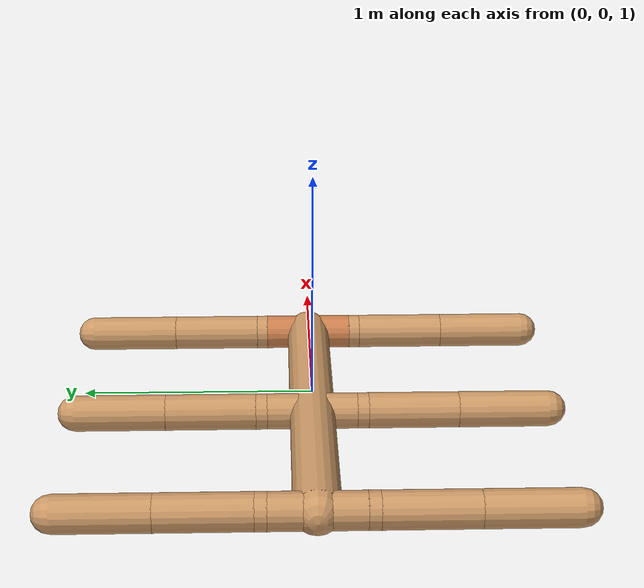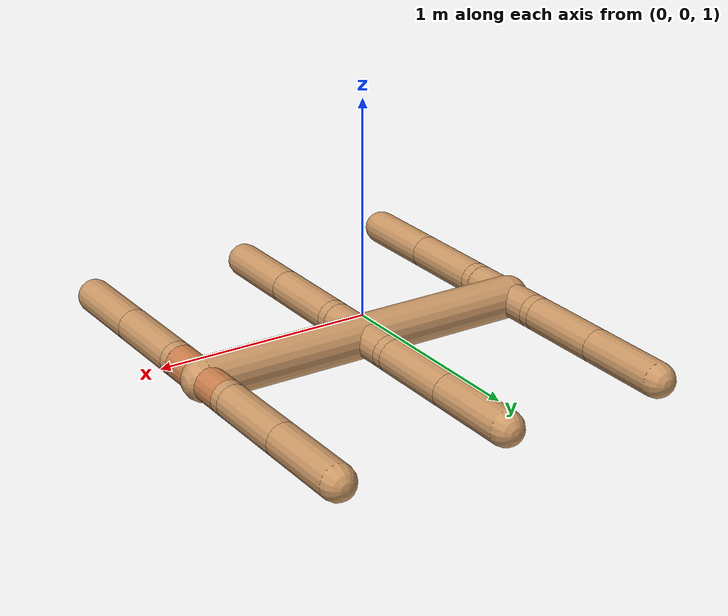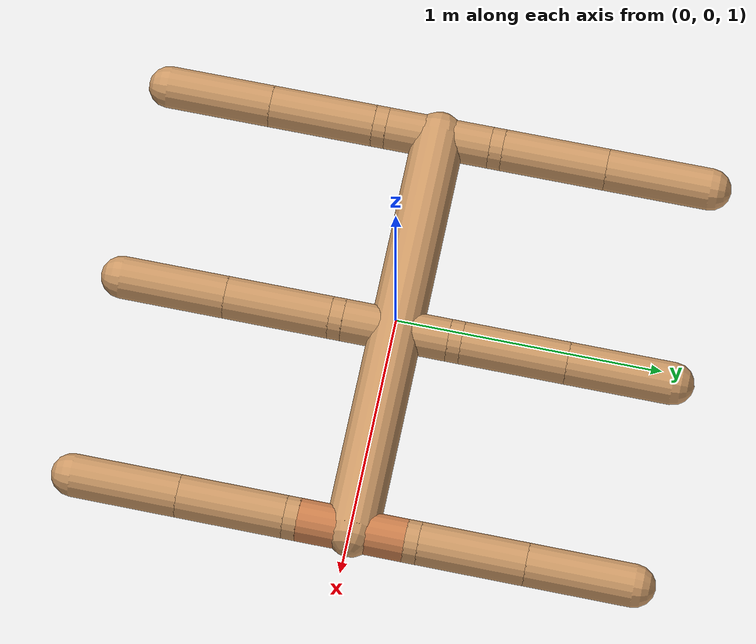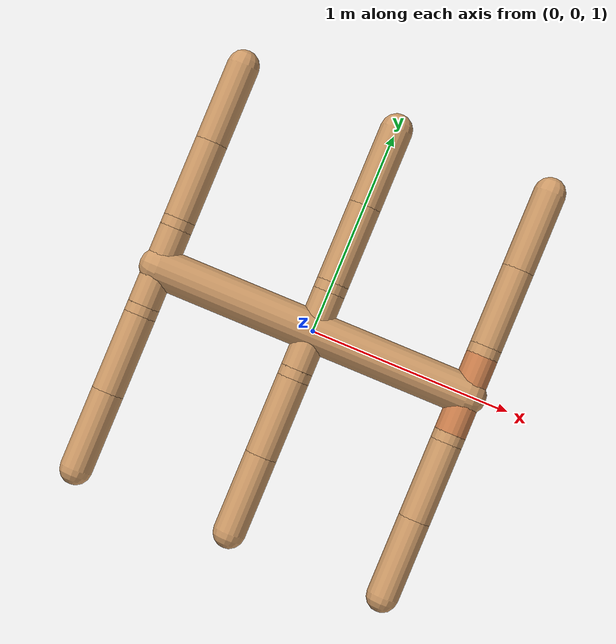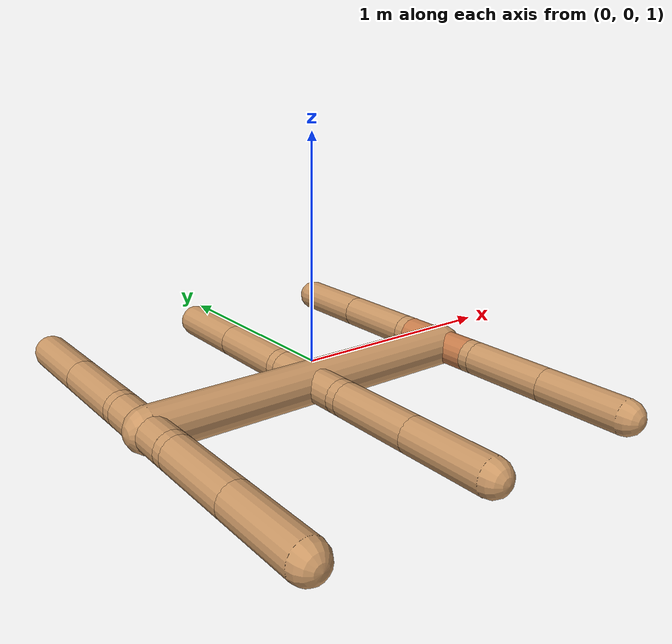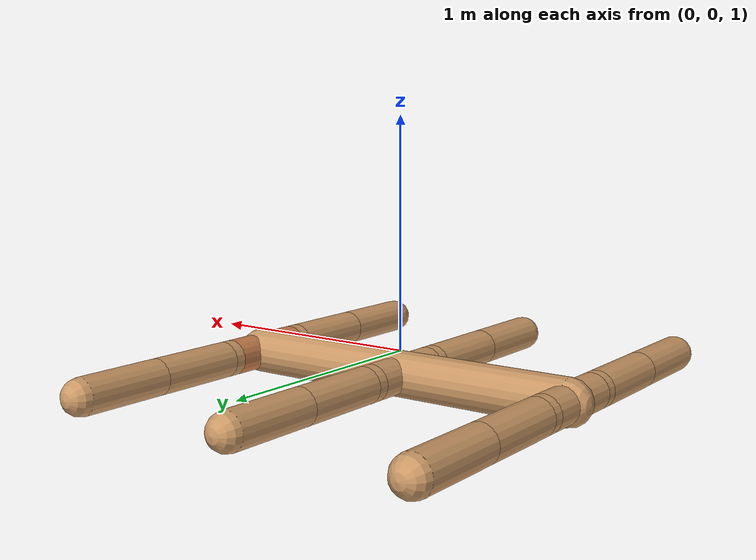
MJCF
<mujoco model="hexapod">
  <compiler angle="degree" coordinate="local" inertiafromgeom="true"/>
  <option integrator="RK4" timestep="0.01"/>
  <custom>
    <numeric data="0.0 0.0 0.55 1.0 0.0 0.0 0.0 0.0 1.0 0.0 -1.0 0.0 -1.0 0.0 1.0" name="init_qpos"/>
  </custom>
  <default>
    <joint armature="1" damping="1" limited="true"/>
    <geom conaffinity="0" condim="3" density="5.0" friction="1.5 0.1 0.1" margin="0.01" rgba="0.8 0.6 0.4 1"/>
  </default>
  <worldbody>
    <body name="torso" pos="0 0 .9">
      <geom name="torso_geom" fromto="-0.8 0 0 0.8 0 0" size="0.1" type="capsule"/>
      <joint armature="0" damping="0" limited="false" margin="0.01" name="root" pos="0 0 0" type="free"/>

      <!-- Front Legs -->
      <body name="front_legs" pos="0.8 0 0">
        <geom fromto="0.0 -0.2 0.0 0.0 0.2 0.0" name="front_legs_geom" size="0.08" type="capsule" rgba=".8 .5 .3 1"/>

        <body name="front_left_leg" pos="0.0 0.2 0.0">
          <joint axis="0 1 0" name="hip_fl" pos="0.0 0.0 0.0" type="hinge" range="-90 90"/>
          <geom fromto="0.0 0.0 0.0 0.0 0.05 0.0" name="front_left_leg_geom" size="0.08" type="capsule"/>
          <body pos="0 0.05 0" name="front_left_foot">
            <joint axis="1 0 0" name="ankle_fl" pos="0.0 0.0 0.0" type="hinge" range="-45 45"/>
            <geom fromto="0.0 0.0 0.0 0.0 0.4 0.0" name="front_left_ankle_geom" size="0.08" type="capsule"/>
            <body pos="0 0.4 0" name="front_left_ext">
              <joint axis="1 0 0" name="ext_fl" pos="0.0 0.0 0.0" type="hinge" range="-30 30"/>
              <geom fromto="0.0 0.0 0.0 0 0.4 0.0" name="front_left_ext_geom" size="0.08" type="capsule"/>
            </body>
          </body>
        </body>

        <body name="front_right_leg" pos="0.0 -0.2 0.0">
          <joint axis="0 1 0" name="hip_fr" pos="0.0 0.0 0.0" type="hinge" range="-90 90"/>
          <geom fromto="0.0 0.0 0.0 0.0 -0.05 0.0" name="front_right_leg_geom" size="0.08" type="capsule"/>
          <body pos="0 -0.05 0" name="front_right_foot">
            <joint axis="1 0 0" name="ankle_fr" pos="0.0 0.0 0.0" type="hinge" range="-45 45"/>
            <geom fromto="0.0 0.0 0.0 0.0 -0.4 0.0" name="front_right_ankle_geom" size="0.08" type="capsule"/>
            <body pos="0 -0.4 0" name="front_right_ext">
              <joint axis="1 0 0" name="ext_fr" pos="0.0 0.0 0.0" type="hinge" range="-30 30"/>
              <geom fromto="0.0 0.0 0.0 0 -0.4 0.0" name="front_right_ext_geom" size="0.08" type="capsule"/>
            </body>
          </body>
        </body>
      </body>

      <!-- Mid Legs -->
      <body name="mid_legs" pos="0 0 0">
        <geom fromto="0.0 -0.2 0.0 0.0 0.2 0.0" name="mid_legs_geom" size="0.08" type="capsule"/>

        <body name="mid_left_leg" pos="0.0 0.2 0.0">
          <joint axis="0 1 0" name="hip_ml" pos="0.0 0.0 0.0" type="hinge" range="-90 90"/>
          <geom fromto="0.0 0.0 0.0 0.0 0.05 0.0" name="mid_left_leg_geom" size="0.08" type="capsule"/>
          <body pos="0 0.05 0" name="mid_left_foot">
            <joint axis="1 0 0" name="ankle_ml" pos="0.0 0.0 0.0" type="hinge" range="-45 45"/>
            <geom fromto="0.0 0.0 0.0 0.0 0.4 0.0" name="mid_left_ankle_geom" size="0.08" type="capsule"/>
            <body pos="0 0.4 0" name="mid_left_ext">
              <joint axis="1 0 0" name="ext_ml" pos="0.0 0.0 0.0" type="hinge" range="-30 30"/>
              <geom fromto="0.0 0.0 0.0 0 0.4 0.0" name="mid_left_ext_geom" size="0.08" type="capsule"/>
            </body>
          </body>
        </body>

        <body name="mid_right_leg" pos="0.0 -0.2 0.0">
          <joint axis="0 1 0" name="hip_mr" pos="0.0 0.0 0.0" type="hinge" range="-90 90"/>
          <geom fromto="0.0 0.0 0.0 0.0 -0.05 0.0" name="mid_right_leg_geom" size="0.08" type="capsule"/>
          <body pos="0 -0.05 0" name="mid_right_foot">
            <joint axis="1 0 0" name="ankle_mr" pos="0.0 0.0 0.0" type="hinge" range="-45 45"/>
            <geom fromto="0.0 0.0 0.0 0.0 -0.4 0.0" name="mid_right_ankle_geom" size="0.08" type="capsule"/>
            <body pos="0 -0.4 0" name="mid_right_ext">
              <joint axis="1 0 0" name="ext_mr" pos="0.0 0.0 0.0" type="hinge" range="-30 30"/>
              <geom fromto="0.0 0.0 0.0 0 -0.4 0.0" name="mid_right_ext_geom" size="0.08" type="capsule"/>
            </body>
          </body>
        </body>
      </body>

      <!-- Back Legs -->
      <body name="back_legs" pos="-0.8 0 0">
        <geom fromto="0.0 -0.2 0.0 0.0 0.2 0.0" name="back_legs_geom" size="0.08" type="capsule"/>

        <body name="back_left_leg" pos="0.0 0.2 0.0">
          <joint axis="0 1 0" name="hip_bl" pos="0.0 0.0 0.0" type="hinge" range="-90 90"/>
          <geom fromto="0.0 0.0 0.0 0.0 0.05 0.0" name="back_left_leg_geom" size="0.08" type="capsule"/>
          <body pos="0 0.05 0" name="back_left_foot">
            <joint axis="1 0 0" name="ankle_bl" pos="0.0 0.0 0.0" type="hinge" range="-45 45"/>
            <geom fromto="0.0 0.0 0.0 0.0 0.4 0.0" name="back_left_ankle_geom" size="0.08" type="capsule"/>
            <body pos="0 0.4 0" name="back_left_ext">
              <joint axis="1 0 0" name="ext_bl" pos="0.0 0.0 0.0" type="hinge" range="-30 30"/>
              <geom fromto="0.0 0.0 0.0 0 0.4 0.0" name="back_left_ext_geom" size="0.08" type="capsule"/>
            </body>
          </body>
        </body>

        <body name="back_right_leg" pos="0.0 -0.2 0.0">
          <joint axis="0 1 0" name="hip_br" pos="0.0 0.0 0.0" type="hinge" range="-90 90"/>
          <geom fromto="0.0 0.0 0.0 0.0 -0.05 0.0" name="back_right_leg_geom" size="0.08" type="capsule"/>
          <body pos="0 -0.05 0" name="back_right_foot">
            <joint axis="1 0 0" name="ankle_br" pos="0.0 0.0 0.0" type="hinge" range="-45 45"/>
            <geom fromto="0.0 0.0 0.0 0.0 -0.4 0.0" name="back_right_ankle_geom" size="0.08" type="capsule"/>
            <body pos="0 -0.4 0" name="back_right_ext">
              <joint axis="1 0 0" name="ext_br" pos="0.0 0.0 0.0" type="hinge" range="-30 30"/>
              <geom fromto="0.0 0.0 0.0 0 -0.4 0.0" name="back_right_ext_geom" size="0.08" type="capsule"/>
            </body>
          </body>
        </body>
      </body>

    </body>
  </worldbody>

  <actuator>
    <motor ctrllimited="true" ctrlrange="-1.0 1.0" joint="hip_fl" gear="150"/>
    <motor ctrllimited="true" ctrlrange="-1.0 1.0" joint="ankle_fl" gear="150"/>
    <motor ctrllimited="true" ctrlrange="-1.0 1.0" joint="ext_fl" gear="150"/>

    <motor ctrllimited="true" ctrlrange="-1.0 1.0" joint="hip_fr" gear="150"/>
    <motor ctrllimited="true" ctrlrange="-1.0 1.0" joint="ankle_fr" gear="150"/>
    <motor ctrllimited="true" ctrlrange="-1.0 1.0" joint="ext_fr" gear="150"/>

    <motor ctrllimited="true" ctrlrange="-1.0 1.0" joint="hip_ml" gear="150"/>
    <motor ctrllimited="true" ctrlrange="-1.0 1.0" joint="ankle_ml" gear="150"/>
    <motor ctrllimited="true" ctrlrange="-1.0 1.0" joint="ext_ml" gear="150"/>

    <motor ctrllimited="true" ctrlrange="-1.0 1.0" joint="hip_mr" gear="150"/>
    <motor ctrllimited="true" ctrlrange="-1.0 1.0" joint="ankle_mr" gear="150"/>
    <motor ctrllimited="true" ctrlrange="-1.0 1.0" joint="ext_mr" gear="150"/>

    <motor ctrllimited="true" ctrlrange="-1.0 1.0" joint="hip_bl" gear="150"/>
    <motor ctrllimited="true" ctrlrange="-1.0 1.0" joint="ankle_bl" gear="150"/>
    <motor ctrllimited="true" ctrlrange="-1.0 1.0" joint="ext_bl" gear="150"/>

    <motor ctrllimited="true" ctrlrange="-1.0 1.0" joint="hip_br" gear="150"/>
    <motor ctrllimited="true" ctrlrange="-1.0 1.0" joint="ankle_br" gear="150"/>
    <motor ctrllimited="true" ctrlrange="-1.0 1.0" joint="ext_br" gear="150"/>
  </actuator>
</mujoco>
